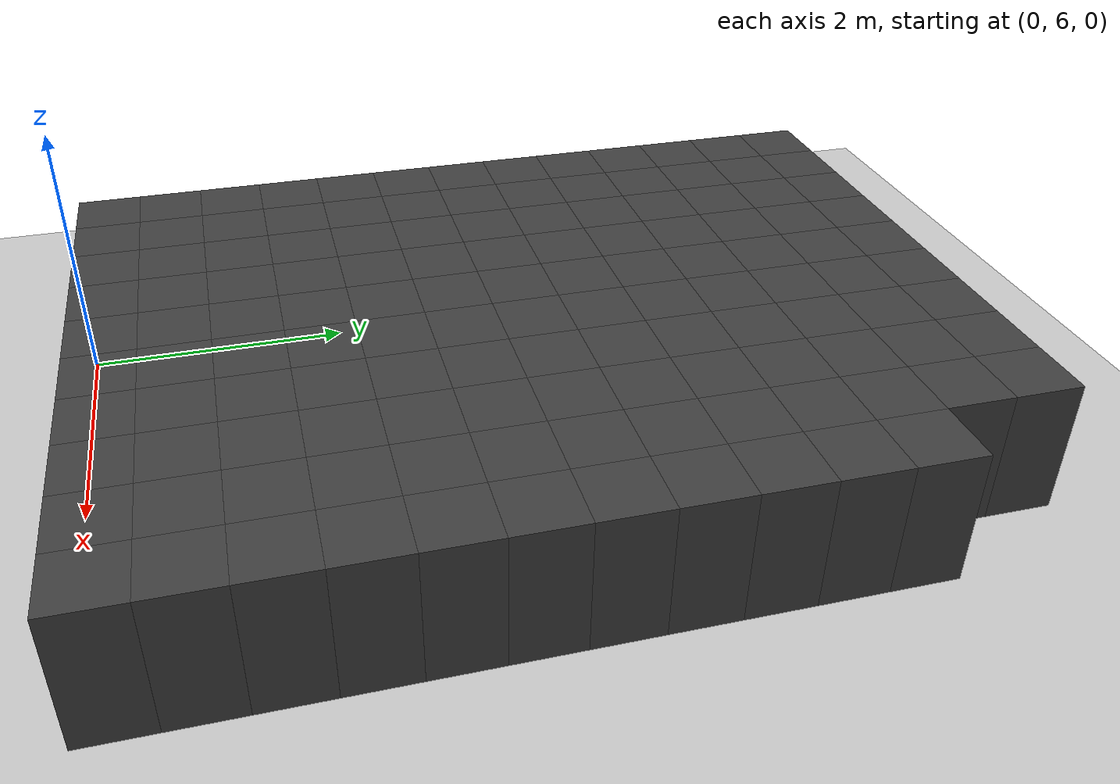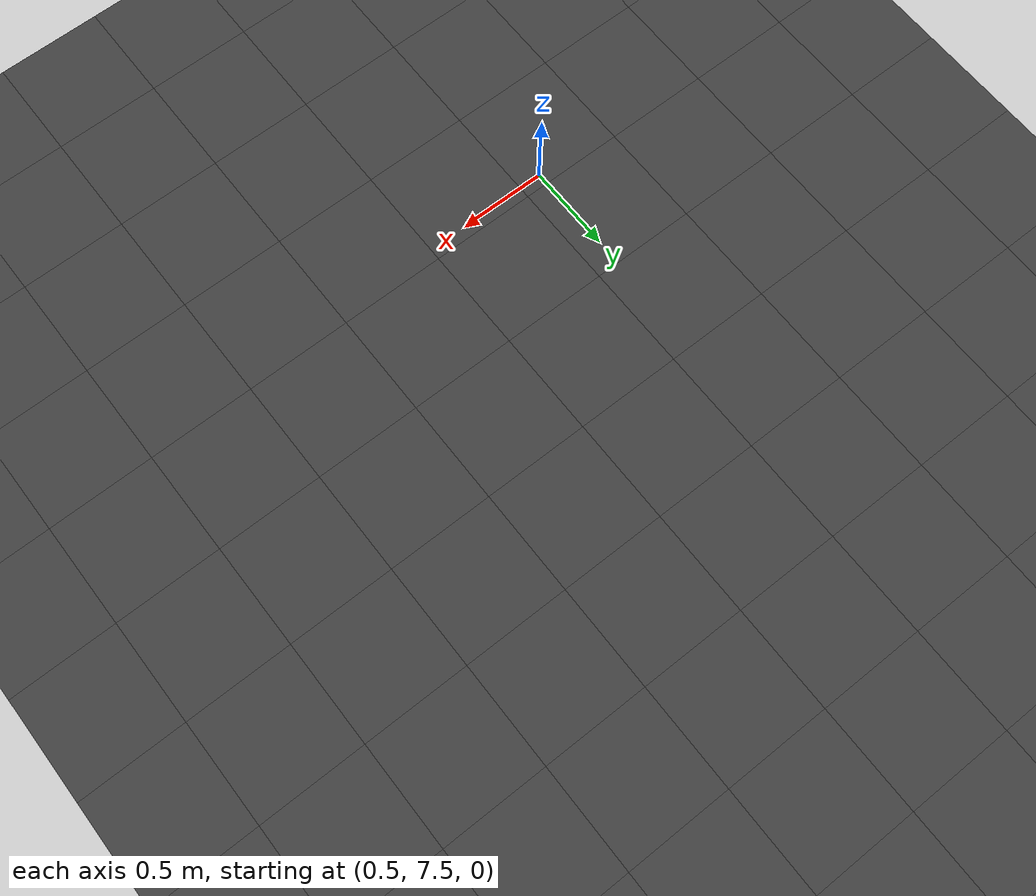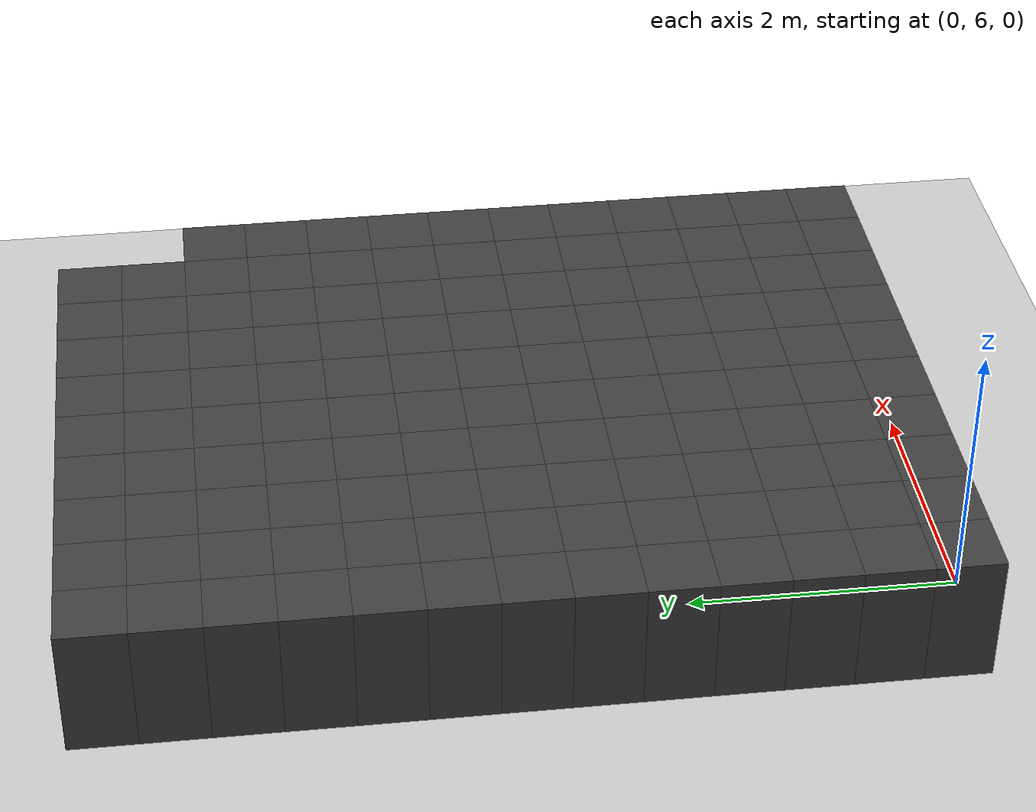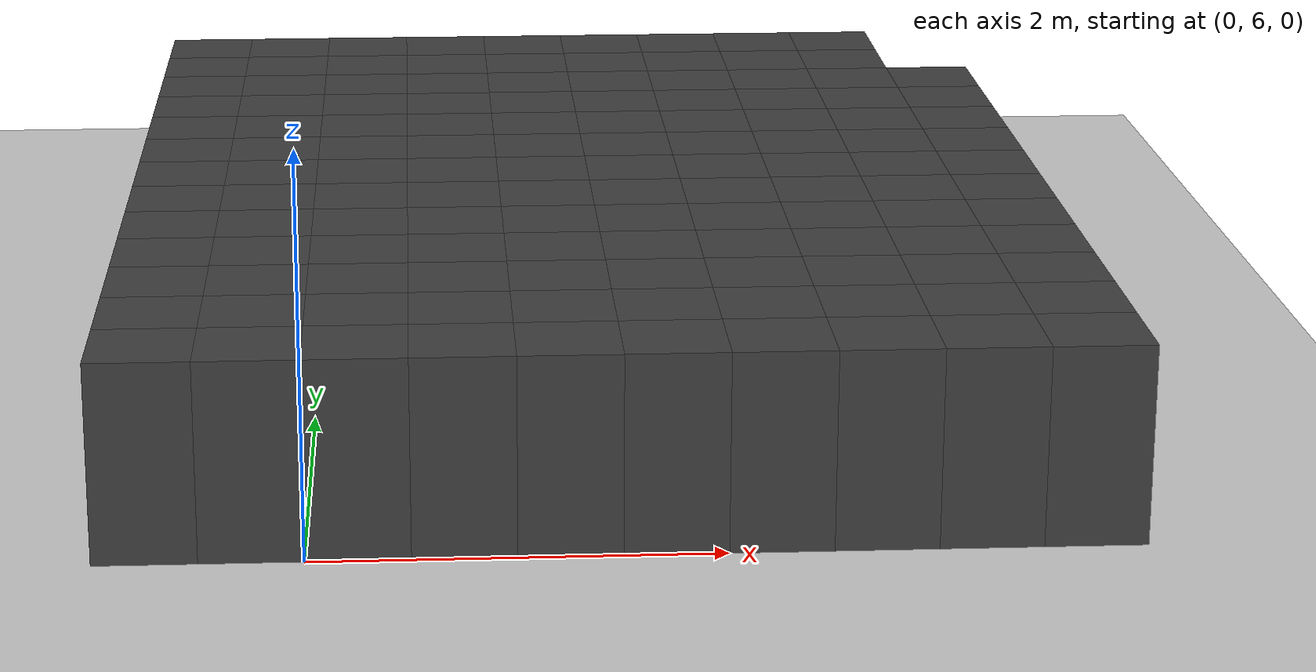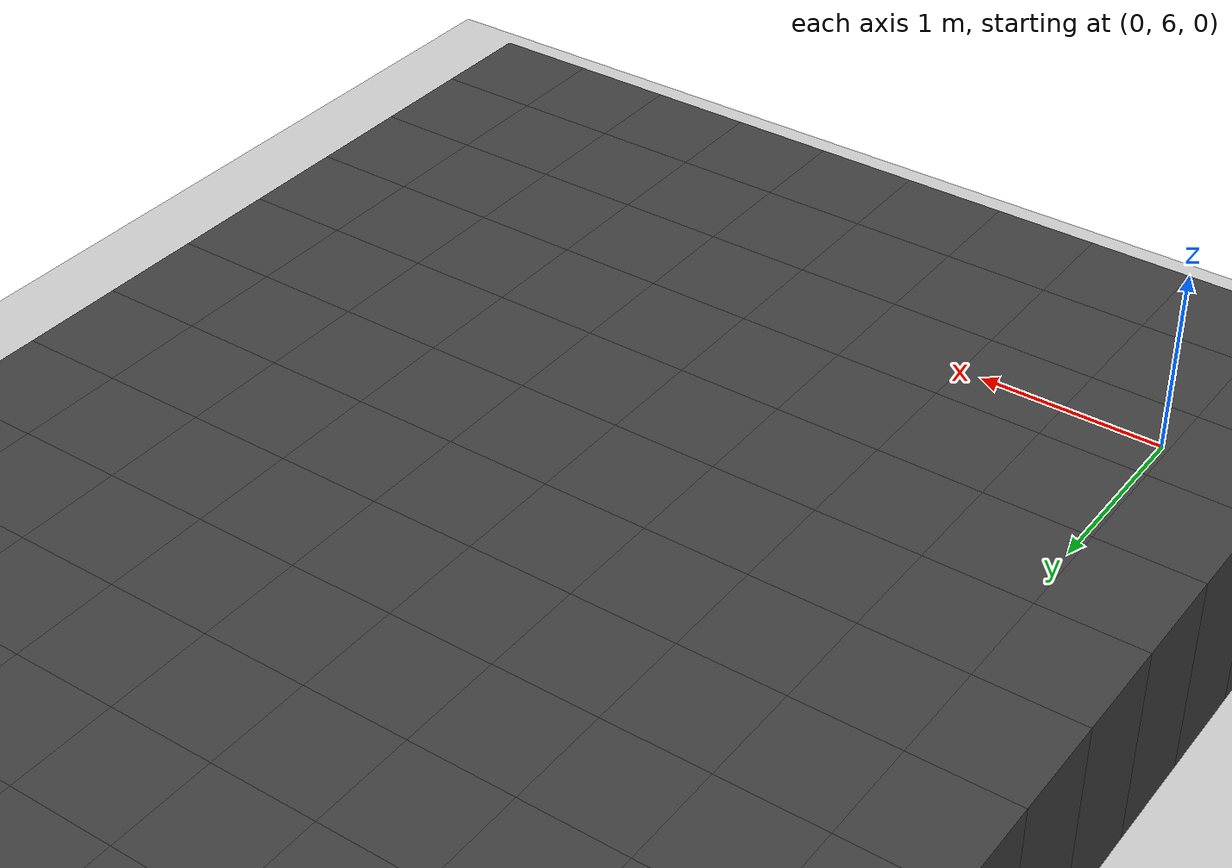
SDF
<sdf version="1.7">
 <world name="map_10777">
  <model name="ground_plane">
   <static>true</static>
   <link name="link">
    <collision name="collision">
     <geometry><plane><normal>0 0 1</normal><size>200 200</size></plane></geometry>
    </collision>
    <visual name="visual">
     <geometry><plane><normal>0 0 1</normal><size>200 200</size></plane></geometry>
     <material><ambient>0.8 0.8 0.8 1</ambient><diffuse>0.8 0.8 0.8 1</diffuse></material>
    </visual>
   </link>
  </model>
  <model name="maze_environment">
   <static>true</static>
   <link name="wall_23">
    <pose>-0.750 12.250 0.500 0 0 0</pose>
    <collision name="col"><geometry><box><size>0.5 0.5 1.0</size></box></geometry></collision>
    <visual name="vis">
     <geometry><box><size>0.5 0.5 1.0</size></box></geometry>
     <material><ambient>0.15 0.15 0.15 1</ambient><diffuse>0.25 0.25 0.25 1</diffuse></material>
    </visual>
   </link>
   <link name="wall_24">
    <pose>-0.250 12.250 0.500 0 0 0</pose>
    <collision name="col"><geometry><box><size>0.5 0.5 1.0</size></box></geometry></collision>
    <visual name="vis">
     <geometry><box><size>0.5 0.5 1.0</size></box></geometry>
     <material><ambient>0.15 0.15 0.15 1</ambient><diffuse>0.25 0.25 0.25 1</diffuse></material>
    </visual>
   </link>
   <link name="wall_25">
    <pose>0.250 12.250 0.500 0 0 0</pose>
    <collision name="col"><geometry><box><size>0.5 0.5 1.0</size></box></geometry></collision>
    <visual name="vis">
     <geometry><box><size>0.5 0.5 1.0</size></box></geometry>
     <material><ambient>0.15 0.15 0.15 1</ambient><diffuse>0.25 0.25 0.25 1</diffuse></material>
    </visual>
   </link>
   <link name="wall_26">
    <pose>0.750 12.250 0.500 0 0 0</pose>
    <collision name="col"><geometry><box><size>0.5 0.5 1.0</size></box></geometry></collision>
    <visual name="vis">
     <geometry><box><size>0.5 0.5 1.0</size></box></geometry>
     <material><ambient>0.15 0.15 0.15 1</ambient><diffuse>0.25 0.25 0.25 1</diffuse></material>
    </visual>
   </link>
   <link name="wall_27">
    <pose>1.250 12.250 0.500 0 0 0</pose>
    <collision name="col"><geometry><box><size>0.5 0.5 1.0</size></box></geometry></collision>
    <visual name="vis">
     <geometry><box><size>0.5 0.5 1.0</size></box></geometry>
     <material><ambient>0.15 0.15 0.15 1</ambient><diffuse>0.25 0.25 0.25 1</diffuse></material>
    </visual>
   </link>
   <link name="wall_28">
    <pose>1.750 12.250 0.500 0 0 0</pose>
    <collision name="col"><geometry><box><size>0.5 0.5 1.0</size></box></geometry></collision>
    <visual name="vis">
     <geometry><box><size>0.5 0.5 1.0</size></box></geometry>
     <material><ambient>0.15 0.15 0.15 1</ambient><diffuse>0.25 0.25 0.25 1</diffuse></material>
    </visual>
   </link>
   <link name="wall_29">
    <pose>2.250 12.250 0.500 0 0 0</pose>
    <collision name="col"><geometry><box><size>0.5 0.5 1.0</size></box></geometry></collision>
    <visual name="vis">
     <geometry><box><size>0.5 0.5 1.0</size></box></geometry>
     <material><ambient>0.15 0.15 0.15 1</ambient><diffuse>0.25 0.25 0.25 1</diffuse></material>
    </visual>
   </link>
   <link name="wall_30">
    <pose>2.750 12.250 0.500 0 0 0</pose>
    <collision name="col"><geometry><box><size>0.5 0.5 1.0</size></box></geometry></collision>
    <visual name="vis">
     <geometry><box><size>0.5 0.5 1.0</size></box></geometry>
     <material><ambient>0.15 0.15 0.15 1</ambient><diffuse>0.25 0.25 0.25 1</diffuse></material>
    </visual>
   </link>
   <link name="wall_31">
    <pose>3.250 12.250 0.500 0 0 0</pose>
    <collision name="col"><geometry><box><size>0.5 0.5 1.0</size></box></geometry></collision>
    <visual name="vis">
     <geometry><box><size>0.5 0.5 1.0</size></box></geometry>
     <material><ambient>0.15 0.15 0.15 1</ambient><diffuse>0.25 0.25 0.25 1</diffuse></material>
    </visual>
   </link>
   <link name="wall_70">
    <pose>-0.750 11.750 0.500 0 0 0</pose>
    <collision name="col"><geometry><box><size>0.5 0.5 1.0</size></box></geometry></collision>
    <visual name="vis">
     <geometry><box><size>0.5 0.5 1.0</size></box></geometry>
     <material><ambient>0.15 0.15 0.15 1</ambient><diffuse>0.25 0.25 0.25 1</diffuse></material>
    </visual>
   </link>
   <link name="wall_71">
    <pose>-0.250 11.750 0.500 0 0 0</pose>
    <collision name="col"><geometry><box><size>0.5 0.5 1.0</size></box></geometry></collision>
    <visual name="vis">
     <geometry><box><size>0.5 0.5 1.0</size></box></geometry>
     <material><ambient>0.15 0.15 0.15 1</ambient><diffuse>0.25 0.25 0.25 1</diffuse></material>
    </visual>
   </link>
   <link name="wall_72">
    <pose>0.250 11.750 0.500 0 0 0</pose>
    <collision name="col"><geometry><box><size>0.5 0.5 1.0</size></box></geometry></collision>
    <visual name="vis">
     <geometry><box><size>0.5 0.5 1.0</size></box></geometry>
     <material><ambient>0.15 0.15 0.15 1</ambient><diffuse>0.25 0.25 0.25 1</diffuse></material>
    </visual>
   </link>
   <link name="wall_73">
    <pose>0.750 11.750 0.500 0 0 0</pose>
    <collision name="col"><geometry><box><size>0.5 0.5 1.0</size></box></geometry></collision>
    <visual name="vis">
     <geometry><box><size>0.5 0.5 1.0</size></box></geometry>
     <material><ambient>0.15 0.15 0.15 1</ambient><diffuse>0.25 0.25 0.25 1</diffuse></material>
    </visual>
   </link>
   <link name="wall_74">
    <pose>1.250 11.750 0.500 0 0 0</pose>
    <collision name="col"><geometry><box><size>0.5 0.5 1.0</size></box></geometry></collision>
    <visual name="vis">
     <geometry><box><size>0.5 0.5 1.0</size></box></geometry>
     <material><ambient>0.15 0.15 0.15 1</ambient><diffuse>0.25 0.25 0.25 1</diffuse></material>
    </visual>
   </link>
   <link name="wall_75">
    <pose>1.750 11.750 0.500 0 0 0</pose>
    <collision name="col"><geometry><box><size>0.5 0.5 1.0</size></box></geometry></collision>
    <visual name="vis">
     <geometry><box><size>0.5 0.5 1.0</size></box></geometry>
     <material><ambient>0.15 0.15 0.15 1</ambient><diffuse>0.25 0.25 0.25 1</diffuse></material>
    </visual>
   </link>
   <link name="wall_76">
    <pose>2.250 11.750 0.500 0 0 0</pose>
    <collision name="col"><geometry><box><size>0.5 0.5 1.0</size></box></geometry></collision>
    <visual name="vis">
     <geometry><box><size>0.5 0.5 1.0</size></box></geometry>
     <material><ambient>0.15 0.15 0.15 1</ambient><diffuse>0.25 0.25 0.25 1</diffuse></material>
    </visual>
   </link>
   <link name="wall_77">
    <pose>2.750 11.750 0.500 0 0 0</pose>
    <collision name="col"><geometry><box><size>0.5 0.5 1.0</size></box></geometry></collision>
    <visual name="vis">
     <geometry><box><size>0.5 0.5 1.0</size></box></geometry>
     <material><ambient>0.15 0.15 0.15 1</ambient><diffuse>0.25 0.25 0.25 1</diffuse></material>
    </visual>
   </link>
   <link name="wall_78">
    <pose>3.250 11.750 0.500 0 0 0</pose>
    <collision name="col"><geometry><box><size>0.5 0.5 1.0</size></box></geometry></collision>
    <visual name="vis">
     <geometry><box><size>0.5 0.5 1.0</size></box></geometry>
     <material><ambient>0.15 0.15 0.15 1</ambient><diffuse>0.25 0.25 0.25 1</diffuse></material>
    </visual>
   </link>
   <link name="wall_117">
    <pose>-0.750 11.250 0.500 0 0 0</pose>
    <collision name="col"><geometry><box><size>0.5 0.5 1.0</size></box></geometry></collision>
    <visual name="vis">
     <geometry><box><size>0.5 0.5 1.0</size></box></geometry>
     <material><ambient>0.15 0.15 0.15 1</ambient><diffuse>0.25 0.25 0.25 1</diffuse></material>
    </visual>
   </link>
   <link name="wall_118">
    <pose>-0.250 11.250 0.500 0 0 0</pose>
    <collision name="col"><geometry><box><size>0.5 0.5 1.0</size></box></geometry></collision>
    <visual name="vis">
     <geometry><box><size>0.5 0.5 1.0</size></box></geometry>
     <material><ambient>0.15 0.15 0.15 1</ambient><diffuse>0.25 0.25 0.25 1</diffuse></material>
    </visual>
   </link>
   <link name="wall_119">
    <pose>0.250 11.250 0.500 0 0 0</pose>
    <collision name="col"><geometry><box><size>0.5 0.5 1.0</size></box></geometry></collision>
    <visual name="vis">
     <geometry><box><size>0.5 0.5 1.0</size></box></geometry>
     <material><ambient>0.15 0.15 0.15 1</ambient><diffuse>0.25 0.25 0.25 1</diffuse></material>
    </visual>
   </link>
   <link name="wall_120">
    <pose>0.750 11.250 0.500 0 0 0</pose>
    <collision name="col"><geometry><box><size>0.5 0.5 1.0</size></box></geometry></collision>
    <visual name="vis">
     <geometry><box><size>0.5 0.5 1.0</size></box></geometry>
     <material><ambient>0.15 0.15 0.15 1</ambient><diffuse>0.25 0.25 0.25 1</diffuse></material>
    </visual>
   </link>
   <link name="wall_121">
    <pose>1.250 11.250 0.500 0 0 0</pose>
    <collision name="col"><geometry><box><size>0.5 0.5 1.0</size></box></geometry></collision>
    <visual name="vis">
     <geometry><box><size>0.5 0.5 1.0</size></box></geometry>
     <material><ambient>0.15 0.15 0.15 1</ambient><diffuse>0.25 0.25 0.25 1</diffuse></material>
    </visual>
   </link>
   <link name="wall_122">
    <pose>1.750 11.250 0.500 0 0 0</pose>
    <collision name="col"><geometry><box><size>0.5 0.5 1.0</size></box></geometry></collision>
    <visual name="vis">
     <geometry><box><size>0.5 0.5 1.0</size></box></geometry>
     <material><ambient>0.15 0.15 0.15 1</ambient><diffuse>0.25 0.25 0.25 1</diffuse></material>
    </visual>
   </link>
   <link name="wall_123">
    <pose>2.250 11.250 0.500 0 0 0</pose>
    <collision name="col"><geometry><box><size>0.5 0.5 1.0</size></box></geometry></collision>
    <visual name="vis">
     <geometry><box><size>0.5 0.5 1.0</size></box></geometry>
     <material><ambient>0.15 0.15 0.15 1</ambient><diffuse>0.25 0.25 0.25 1</diffuse></material>
    </visual>
   </link>
   <link name="wall_124">
    <pose>2.750 11.250 0.500 0 0 0</pose>
    <collision name="col"><geometry><box><size>0.5 0.5 1.0</size></box></geometry></collision>
    <visual name="vis">
     <geometry><box><size>0.5 0.5 1.0</size></box></geometry>
     <material><ambient>0.15 0.15 0.15 1</ambient><diffuse>0.25 0.25 0.25 1</diffuse></material>
    </visual>
   </link>
   <link name="wall_125">
    <pose>3.250 11.250 0.500 0 0 0</pose>
    <collision name="col"><geometry><box><size>0.5 0.5 1.0</size></box></geometry></collision>
    <visual name="vis">
     <geometry><box><size>0.5 0.5 1.0</size></box></geometry>
     <material><ambient>0.15 0.15 0.15 1</ambient><diffuse>0.25 0.25 0.25 1</diffuse></material>
    </visual>
   </link>
   <link name="wall_126">
    <pose>3.750 11.250 0.500 0 0 0</pose>
    <collision name="col"><geometry><box><size>0.5 0.5 1.0</size></box></geometry></collision>
    <visual name="vis">
     <geometry><box><size>0.5 0.5 1.0</size></box></geometry>
     <material><ambient>0.15 0.15 0.15 1</ambient><diffuse>0.25 0.25 0.25 1</diffuse></material>
    </visual>
   </link>
   <link name="wall_164">
    <pose>-0.750 10.750 0.500 0 0 0</pose>
    <collision name="col"><geometry><box><size>0.5 0.5 1.0</size></box></geometry></collision>
    <visual name="vis">
     <geometry><box><size>0.5 0.5 1.0</size></box></geometry>
     <material><ambient>0.15 0.15 0.15 1</ambient><diffuse>0.25 0.25 0.25 1</diffuse></material>
    </visual>
   </link>
   <link name="wall_165">
    <pose>-0.250 10.750 0.500 0 0 0</pose>
    <collision name="col"><geometry><box><size>0.5 0.5 1.0</size></box></geometry></collision>
    <visual name="vis">
     <geometry><box><size>0.5 0.5 1.0</size></box></geometry>
     <material><ambient>0.15 0.15 0.15 1</ambient><diffuse>0.25 0.25 0.25 1</diffuse></material>
    </visual>
   </link>
   <link name="wall_166">
    <pose>0.250 10.750 0.500 0 0 0</pose>
    <collision name="col"><geometry><box><size>0.5 0.5 1.0</size></box></geometry></collision>
    <visual name="vis">
     <geometry><box><size>0.5 0.5 1.0</size></box></geometry>
     <material><ambient>0.15 0.15 0.15 1</ambient><diffuse>0.25 0.25 0.25 1</diffuse></material>
    </visual>
   </link>
   <link name="wall_167">
    <pose>0.750 10.750 0.500 0 0 0</pose>
    <collision name="col"><geometry><box><size>0.5 0.5 1.0</size></box></geometry></collision>
    <visual name="vis">
     <geometry><box><size>0.5 0.5 1.0</size></box></geometry>
     <material><ambient>0.15 0.15 0.15 1</ambient><diffuse>0.25 0.25 0.25 1</diffuse></material>
    </visual>
   </link>
   <link name="wall_168">
    <pose>1.250 10.750 0.500 0 0 0</pose>
    <collision name="col"><geometry><box><size>0.5 0.5 1.0</size></box></geometry></collision>
    <visual name="vis">
     <geometry><box><size>0.5 0.5 1.0</size></box></geometry>
     <material><ambient>0.15 0.15 0.15 1</ambient><diffuse>0.25 0.25 0.25 1</diffuse></material>
    </visual>
   </link>
   <link name="wall_169">
    <pose>1.750 10.750 0.500 0 0 0</pose>
    <collision name="col"><geometry><box><size>0.5 0.5 1.0</size></box></geometry></collision>
    <visual name="vis">
     <geometry><box><size>0.5 0.5 1.0</size></box></geometry>
     <material><ambient>0.15 0.15 0.15 1</ambient><diffuse>0.25 0.25 0.25 1</diffuse></material>
    </visual>
   </link>
   <link name="wall_170">
    <pose>2.250 10.750 0.500 0 0 0</pose>
    <collision name="col"><geometry><box><size>0.5 0.5 1.0</size></box></geometry></collision>
    <visual name="vis">
     <geometry><box><size>0.5 0.5 1.0</size></box></geometry>
     <material><ambient>0.15 0.15 0.15 1</ambient><diffuse>0.25 0.25 0.25 1</diffuse></material>
    </visual>
   </link>
   <link name="wall_171">
    <pose>2.750 10.750 0.500 0 0 0</pose>
    <collision name="col"><geometry><box><size>0.5 0.5 1.0</size></box></geometry></collision>
    <visual name="vis">
     <geometry><box><size>0.5 0.5 1.0</size></box></geometry>
     <material><ambient>0.15 0.15 0.15 1</ambient><diffuse>0.25 0.25 0.25 1</diffuse></material>
    </visual>
   </link>
   <link name="wall_172">
    <pose>3.250 10.750 0.500 0 0 0</pose>
    <collision name="col"><geometry><box><size>0.5 0.5 1.0</size></box></geometry></collision>
    <visual name="vis">
     <geometry><box><size>0.5 0.5 1.0</size></box></geometry>
     <material><ambient>0.15 0.15 0.15 1</ambient><diffuse>0.25 0.25 0.25 1</diffuse></material>
    </visual>
   </link>
   <link name="wall_173">
    <pose>3.750 10.750 0.500 0 0 0</pose>
    <collision name="col"><geometry><box><size>0.5 0.5 1.0</size></box></geometry></collision>
    <visual name="vis">
     <geometry><box><size>0.5 0.5 1.0</size></box></geometry>
     <material><ambient>0.15 0.15 0.15 1</ambient><diffuse>0.25 0.25 0.25 1</diffuse></material>
    </visual>
   </link>
   <link name="wall_213">
    <pose>-0.750 10.250 0.500 0 0 0</pose>
    <collision name="col"><geometry><box><size>0.5 0.5 1.0</size></box></geometry></collision>
    <visual name="vis">
     <geometry><box><size>0.5 0.5 1.0</size></box></geometry>
     <material><ambient>0.15 0.15 0.15 1</ambient><diffuse>0.25 0.25 0.25 1</diffuse></material>
    </visual>
   </link>
   <link name="wall_214">
    <pose>-0.250 10.250 0.500 0 0 0</pose>
    <collision name="col"><geometry><box><size>0.5 0.5 1.0</size></box></geometry></collision>
    <visual name="vis">
     <geometry><box><size>0.5 0.5 1.0</size></box></geometry>
     <material><ambient>0.15 0.15 0.15 1</ambient><diffuse>0.25 0.25 0.25 1</diffuse></material>
    </visual>
   </link>
   <link name="wall_215">
    <pose>0.250 10.250 0.500 0 0 0</pose>
    <collision name="col"><geometry><box><size>0.5 0.5 1.0</size></box></geometry></collision>
    <visual name="vis">
     <geometry><box><size>0.5 0.5 1.0</size></box></geometry>
     <material><ambient>0.15 0.15 0.15 1</ambient><diffuse>0.25 0.25 0.25 1</diffuse></material>
    </visual>
   </link>
   <link name="wall_216">
    <pose>0.750 10.250 0.500 0 0 0</pose>
    <collision name="col"><geometry><box><size>0.5 0.5 1.0</size></box></geometry></collision>
    <visual name="vis">
     <geometry><box><size>0.5 0.5 1.0</size></box></geometry>
     <material><ambient>0.15 0.15 0.15 1</ambient><diffuse>0.25 0.25 0.25 1</diffuse></material>
    </visual>
   </link>
   <link name="wall_217">
    <pose>1.250 10.250 0.500 0 0 0</pose>
    <collision name="col"><geometry><box><size>0.5 0.5 1.0</size></box></geometry></collision>
    <visual name="vis">
     <geometry><box><size>0.5 0.5 1.0</size></box></geometry>
     <material><ambient>0.15 0.15 0.15 1</ambient><diffuse>0.25 0.25 0.25 1</diffuse></material>
    </visual>
   </link>
   <link name="wall_218">
    <pose>1.750 10.250 0.500 0 0 0</pose>
    <collision name="col"><geometry><box><size>0.5 0.5 1.0</size></box></geometry></collision>
    <visual name="vis">
     <geometry><box><size>0.5 0.5 1.0</size></box></geometry>
     <material><ambient>0.15 0.15 0.15 1</ambient><diffuse>0.25 0.25 0.25 1</diffuse></material>
    </visual>
   </link>
   <link name="wall_219">
    <pose>2.250 10.250 0.500 0 0 0</pose>
    <collision name="col"><geometry><box><size>0.5 0.5 1.0</size></box></geometry></collision>
    <visual name="vis">
     <geometry><box><size>0.5 0.5 1.0</size></box></geometry>
     <material><ambient>0.15 0.15 0.15 1</ambient><diffuse>0.25 0.25 0.25 1</diffuse></material>
    </visual>
   </link>
   <link name="wall_220">
    <pose>2.750 10.250 0.500 0 0 0</pose>
    <collision name="col"><geometry><box><size>0.5 0.5 1.0</size></box></geometry></collision>
    <visual name="vis">
     <geometry><box><size>0.5 0.5 1.0</size></box></geometry>
     <material><ambient>0.15 0.15 0.15 1</ambient><diffuse>0.25 0.25 0.25 1</diffuse></material>
    </visual>
   </link>
   <link name="wall_221">
    <pose>3.250 10.250 0.500 0 0 0</pose>
    <collision name="col"><geometry><box><size>0.5 0.5 1.0</size></box></geometry></collision>
    <visual name="vis">
     <geometry><box><size>0.5 0.5 1.0</size></box></geometry>
     <material><ambient>0.15 0.15 0.15 1</ambient><diffuse>0.25 0.25 0.25 1</diffuse></material>
    </visual>
   </link>
   <link name="wall_222">
    <pose>3.750 10.250 0.500 0 0 0</pose>
    <collision name="col"><geometry><box><size>0.5 0.5 1.0</size></box></geometry></collision>
    <visual name="vis">
     <geometry><box><size>0.5 0.5 1.0</size></box></geometry>
     <material><ambient>0.15 0.15 0.15 1</ambient><diffuse>0.25 0.25 0.25 1</diffuse></material>
    </visual>
   </link>
   <link name="wall_262">
    <pose>-0.750 9.750 0.500 0 0 0</pose>
    <collision name="col"><geometry><box><size>0.5 0.5 1.0</size></box></geometry></collision>
    <visual name="vis">
     <geometry><box><size>0.5 0.5 1.0</size></box></geometry>
     <material><ambient>0.15 0.15 0.15 1</ambient><diffuse>0.25 0.25 0.25 1</diffuse></material>
    </visual>
   </link>
   <link name="wall_263">
    <pose>-0.250 9.750 0.500 0 0 0</pose>
    <collision name="col"><geometry><box><size>0.5 0.5 1.0</size></box></geometry></collision>
    <visual name="vis">
     <geometry><box><size>0.5 0.5 1.0</size></box></geometry>
     <material><ambient>0.15 0.15 0.15 1</ambient><diffuse>0.25 0.25 0.25 1</diffuse></material>
    </visual>
   </link>
   <link name="wall_264">
    <pose>0.250 9.750 0.500 0 0 0</pose>
    <collision name="col"><geometry><box><size>0.5 0.5 1.0</size></box></geometry></collision>
    <visual name="vis">
     <geometry><box><size>0.5 0.5 1.0</size></box></geometry>
     <material><ambient>0.15 0.15 0.15 1</ambient><diffuse>0.25 0.25 0.25 1</diffuse></material>
    </visual>
   </link>
   <link name="wall_265">
    <pose>0.750 9.750 0.500 0 0 0</pose>
    <collision name="col"><geometry><box><size>0.5 0.5 1.0</size></box></geometry></collision>
    <visual name="vis">
     <geometry><box><size>0.5 0.5 1.0</size></box></geometry>
     <material><ambient>0.15 0.15 0.15 1</ambient><diffuse>0.25 0.25 0.25 1</diffuse></material>
    </visual>
   </link>
   <link name="wall_266">
    <pose>1.250 9.750 0.500 0 0 0</pose>
    <collision name="col"><geometry><box><size>0.5 0.5 1.0</size></box></geometry></collision>
    <visual name="vis">
     <geometry><box><size>0.5 0.5 1.0</size></box></geometry>
     <material><ambient>0.15 0.15 0.15 1</ambient><diffuse>0.25 0.25 0.25 1</diffuse></material>
    </visual>
   </link>
   <link name="wall_267">
    <pose>1.750 9.750 0.500 0 0 0</pose>
    <collision name="col"><geometry><box><size>0.5 0.5 1.0</size></box></geometry></collision>
    <visual name="vis">
     <geometry><box><size>0.5 0.5 1.0</size></box></geometry>
     <material><ambient>0.15 0.15 0.15 1</ambient><diffuse>0.25 0.25 0.25 1</diffuse></material>
    </visual>
   </link>
   <link name="wall_268">
    <pose>2.250 9.750 0.500 0 0 0</pose>
    <collision name="col"><geometry><box><size>0.5 0.5 1.0</size></box></geometry></collision>
    <visual name="vis">
     <geometry><box><size>0.5 0.5 1.0</size></box></geometry>
     <material><ambient>0.15 0.15 0.15 1</ambient><diffuse>0.25 0.25 0.25 1</diffuse></material>
    </visual>
   </link>
   <link name="wall_269">
    <pose>2.750 9.750 0.500 0 0 0</pose>
    <collision name="col"><geometry><box><size>0.5 0.5 1.0</size></box></geometry></collision>
    <visual name="vis">
     <geometry><box><size>0.5 0.5 1.0</size></box></geometry>
     <material><ambient>0.15 0.15 0.15 1</ambient><diffuse>0.25 0.25 0.25 1</diffuse></material>
    </visual>
   </link>
   <link name="wall_270">
    <pose>3.250 9.750 0.500 0 0 0</pose>
    <collision name="col"><geometry><box><size>0.5 0.5 1.0</size></box></geometry></collision>
    <visual name="vis">
     <geometry><box><size>0.5 0.5 1.0</size></box></geometry>
     <material><ambient>0.15 0.15 0.15 1</ambient><diffuse>0.25 0.25 0.25 1</diffuse></material>
    </visual>
   </link>
   <link name="wall_271">
    <pose>3.750 9.750 0.500 0 0 0</pose>
    <collision name="col"><geometry><box><size>0.5 0.5 1.0</size></box></geometry></collision>
    <visual name="vis">
     <geometry><box><size>0.5 0.5 1.0</size></box></geometry>
     <material><ambient>0.15 0.15 0.15 1</ambient><diffuse>0.25 0.25 0.25 1</diffuse></material>
    </visual>
   </link>
   <link name="wall_311">
    <pose>-0.750 9.250 0.500 0 0 0</pose>
    <collision name="col"><geometry><box><size>0.5 0.5 1.0</size></box></geometry></collision>
    <visual name="vis">
     <geometry><box><size>0.5 0.5 1.0</size></box></geometry>
     <material><ambient>0.15 0.15 0.15 1</ambient><diffuse>0.25 0.25 0.25 1</diffuse></material>
    </visual>
   </link>
   <link name="wall_312">
    <pose>-0.250 9.250 0.500 0 0 0</pose>
    <collision name="col"><geometry><box><size>0.5 0.5 1.0</size></box></geometry></collision>
    <visual name="vis">
     <geometry><box><size>0.5 0.5 1.0</size></box></geometry>
     <material><ambient>0.15 0.15 0.15 1</ambient><diffuse>0.25 0.25 0.25 1</diffuse></material>
    </visual>
   </link>
   <link name="wall_313">
    <pose>0.250 9.250 0.500 0 0 0</pose>
    <collision name="col"><geometry><box><size>0.5 0.5 1.0</size></box></geometry></collision>
    <visual name="vis">
     <geometry><box><size>0.5 0.5 1.0</size></box></geometry>
     <material><ambient>0.15 0.15 0.15 1</ambient><diffuse>0.25 0.25 0.25 1</diffuse></material>
    </visual>
   </link>
   <link name="wall_314">
    <pose>0.750 9.250 0.500 0 0 0</pose>
    <collision name="col"><geometry><box><size>0.5 0.5 1.0</size></box></geometry></collision>
    <visual name="vis">
     <geometry><box><size>0.5 0.5 1.0</size></box></geometry>
     <material><ambient>0.15 0.15 0.15 1</ambient><diffuse>0.25 0.25 0.25 1</diffuse></material>
    </visual>
   </link>
   <link name="wall_315">
    <pose>1.250 9.250 0.500 0 0 0</pose>
    <collision name="col"><geometry><box><size>0.5 0.5 1.0</size></box></geometry></collision>
    <visual name="vis">
     <geometry><box><size>0.5 0.5 1.0</size></box></geometry>
     <material><ambient>0.15 0.15 0.15 1</ambient><diffuse>0.25 0.25 0.25 1</diffuse></material>
    </visual>
   </link>
   <link name="wall_316">
    <pose>1.750 9.250 0.500 0 0 0</pose>
    <collision name="col"><geometry><box><size>0.5 0.5 1.0</size></box></geometry></collision>
    <visual name="vis">
     <geometry><box><size>0.5 0.5 1.0</size></box></geometry>
     <material><ambient>0.15 0.15 0.15 1</ambient><diffuse>0.25 0.25 0.25 1</diffuse></material>
    </visual>
   </link>
   <link name="wall_317">
    <pose>2.250 9.250 0.500 0 0 0</pose>
    <collision name="col"><geometry><box><size>0.5 0.5 1.0</size></box></geometry></collision>
    <visual name="vis">
     <geometry><box><size>0.5 0.5 1.0</size></box></geometry>
     <material><ambient>0.15 0.15 0.15 1</ambient><diffuse>0.25 0.25 0.25 1</diffuse></material>
    </visual>
   </link>
   <link name="wall_318">
    <pose>2.750 9.250 0.500 0 0 0</pose>
    <collision name="col"><geometry><box><size>0.5 0.5 1.0</size></box></geometry></collision>
    <visual name="vis">
     <geometry><box><size>0.5 0.5 1.0</size></box></geometry>
     <material><ambient>0.15 0.15 0.15 1</ambient><diffuse>0.25 0.25 0.25 1</diffuse></material>
    </visual>
   </link>
   <link name="wall_319">
    <pose>3.250 9.250 0.500 0 0 0</pose>
    <collision name="col"><geometry><box><size>0.5 0.5 1.0</size></box></geometry></collision>
    <visual name="vis">
     <geometry><box><size>0.5 0.5 1.0</size></box></geometry>
     <material><ambient>0.15 0.15 0.15 1</ambient><diffuse>0.25 0.25 0.25 1</diffuse></material>
    </visual>
   </link>
   <link name="wall_320">
    <pose>3.750 9.250 0.500 0 0 0</pose>
    <collision name="col"><geometry><box><size>0.5 0.5 1.0</size></box></geometry></collision>
    <visual name="vis">
     <geometry><box><size>0.5 0.5 1.0</size></box></geometry>
     <material><ambient>0.15 0.15 0.15 1</ambient><diffuse>0.25 0.25 0.25 1</diffuse></material>
    </visual>
   </link>
   <link name="wall_360">
    <pose>-0.750 8.750 0.500 0 0 0</pose>
    <collision name="col"><geometry><box><size>0.5 0.5 1.0</size></box></geometry></collision>
    <visual name="vis">
     <geometry><box><size>0.5 0.5 1.0</size></box></geometry>
     <material><ambient>0.15 0.15 0.15 1</ambient><diffuse>0.25 0.25 0.25 1</diffuse></material>
    </visual>
   </link>
   <link name="wall_361">
    <pose>-0.250 8.750 0.500 0 0 0</pose>
    <collision name="col"><geometry><box><size>0.5 0.5 1.0</size></box></geometry></collision>
    <visual name="vis">
     <geometry><box><size>0.5 0.5 1.0</size></box></geometry>
     <material><ambient>0.15 0.15 0.15 1</ambient><diffuse>0.25 0.25 0.25 1</diffuse></material>
    </visual>
   </link>
   <link name="wall_362">
    <pose>0.250 8.750 0.500 0 0 0</pose>
    <collision name="col"><geometry><box><size>0.5 0.5 1.0</size></box></geometry></collision>
    <visual name="vis">
     <geometry><box><size>0.5 0.5 1.0</size></box></geometry>
     <material><ambient>0.15 0.15 0.15 1</ambient><diffuse>0.25 0.25 0.25 1</diffuse></material>
    </visual>
   </link>
   <link name="wall_363">
    <pose>0.750 8.750 0.500 0 0 0</pose>
    <collision name="col"><geometry><box><size>0.5 0.5 1.0</size></box></geometry></collision>
    <visual name="vis">
     <geometry><box><size>0.5 0.5 1.0</size></box></geometry>
     <material><ambient>0.15 0.15 0.15 1</ambient><diffuse>0.25 0.25 0.25 1</diffuse></material>
    </visual>
   </link>
   <link name="wall_364">
    <pose>1.250 8.750 0.500 0 0 0</pose>
    <collision name="col"><geometry><box><size>0.5 0.5 1.0</size></box></geometry></collision>
    <visual name="vis">
     <geometry><box><size>0.5 0.5 1.0</size></box></geometry>
     <material><ambient>0.15 0.15 0.15 1</ambient><diffuse>0.25 0.25 0.25 1</diffuse></material>
    </visual>
   </link>
   <link name="wall_365">
    <pose>1.750 8.750 0.500 0 0 0</pose>
    <collision name="col"><geometry><box><size>0.5 0.5 1.0</size></box></geometry></collision>
    <visual name="vis">
     <geometry><box><size>0.5 0.5 1.0</size></box></geometry>
     <material><ambient>0.15 0.15 0.15 1</ambient><diffuse>0.25 0.25 0.25 1</diffuse></material>
    </visual>
   </link>
   <link name="wall_366">
    <pose>2.250 8.750 0.500 0 0 0</pose>
    <collision name="col"><geometry><box><size>0.5 0.5 1.0</size></box></geometry></collision>
    <visual name="vis">
     <geometry><box><size>0.5 0.5 1.0</size></box></geometry>
     <material><ambient>0.15 0.15 0.15 1</ambient><diffuse>0.25 0.25 0.25 1</diffuse></material>
    </visual>
   </link>
   <link name="wall_367">
    <pose>2.750 8.750 0.500 0 0 0</pose>
    <collision name="col"><geometry><box><size>0.5 0.5 1.0</size></box></geometry></collision>
    <visual name="vis">
     <geometry><box><size>0.5 0.5 1.0</size></box></geometry>
     <material><ambient>0.15 0.15 0.15 1</ambient><diffuse>0.25 0.25 0.25 1</diffuse></material>
    </visual>
   </link>
   <link name="wall_368">
    <pose>3.250 8.750 0.500 0 0 0</pose>
    <collision name="col"><geometry><box><size>0.5 0.5 1.0</size></box></geometry></collision>
    <visual name="vis">
     <geometry><box><size>0.5 0.5 1.0</size></box></geometry>
     <material><ambient>0.15 0.15 0.15 1</ambient><diffuse>0.25 0.25 0.25 1</diffuse></material>
    </visual>
   </link>
   <link name="wall_369">
    <pose>3.750 8.750 0.500 0 0 0</pose>
    <collision name="col"><geometry><box><size>0.5 0.5 1.0</size></box></geometry></collision>
    <visual name="vis">
     <geometry><box><size>0.5 0.5 1.0</size></box></geometry>
     <material><ambient>0.15 0.15 0.15 1</ambient><diffuse>0.25 0.25 0.25 1</diffuse></material>
    </visual>
   </link>
   <link name="wall_409">
    <pose>-0.750 8.250 0.500 0 0 0</pose>
    <collision name="col"><geometry><box><size>0.5 0.5 1.0</size></box></geometry></collision>
    <visual name="vis">
     <geometry><box><size>0.5 0.5 1.0</size></box></geometry>
     <material><ambient>0.15 0.15 0.15 1</ambient><diffuse>0.25 0.25 0.25 1</diffuse></material>
    </visual>
   </link>
   <link name="wall_410">
    <pose>-0.250 8.250 0.500 0 0 0</pose>
    <collision name="col"><geometry><box><size>0.5 0.5 1.0</size></box></geometry></collision>
    <visual name="vis">
     <geometry><box><size>0.5 0.5 1.0</size></box></geometry>
     <material><ambient>0.15 0.15 0.15 1</ambient><diffuse>0.25 0.25 0.25 1</diffuse></material>
    </visual>
   </link>
   <link name="wall_411">
    <pose>0.250 8.250 0.500 0 0 0</pose>
    <collision name="col"><geometry><box><size>0.5 0.5 1.0</size></box></geometry></collision>
    <visual name="vis">
     <geometry><box><size>0.5 0.5 1.0</size></box></geometry>
     <material><ambient>0.15 0.15 0.15 1</ambient><diffuse>0.25 0.25 0.25 1</diffuse></material>
    </visual>
   </link>
   <link name="wall_412">
    <pose>0.750 8.250 0.500 0 0 0</pose>
    <collision name="col"><geometry><box><size>0.5 0.5 1.0</size></box></geometry></collision>
    <visual name="vis">
     <geometry><box><size>0.5 0.5 1.0</size></box></geometry>
     <material><ambient>0.15 0.15 0.15 1</ambient><diffuse>0.25 0.25 0.25 1</diffuse></material>
    </visual>
   </link>
   <link name="wall_413">
    <pose>1.250 8.250 0.500 0 0 0</pose>
    <collision name="col"><geometry><box><size>0.5 0.5 1.0</size></box></geometry></collision>
    <visual name="vis">
     <geometry><box><size>0.5 0.5 1.0</size></box></geometry>
     <material><ambient>0.15 0.15 0.15 1</ambient><diffuse>0.25 0.25 0.25 1</diffuse></material>
    </visual>
   </link>
   <link name="wall_414">
    <pose>1.750 8.250 0.500 0 0 0</pose>
    <collision name="col"><geometry><box><size>0.5 0.5 1.0</size></box></geometry></collision>
    <visual name="vis">
     <geometry><box><size>0.5 0.5 1.0</size></box></geometry>
     <material><ambient>0.15 0.15 0.15 1</ambient><diffuse>0.25 0.25 0.25 1</diffuse></material>
    </visual>
   </link>
   <link name="wall_415">
    <pose>2.250 8.250 0.500 0 0 0</pose>
    <collision name="col"><geometry><box><size>0.5 0.5 1.0</size></box></geometry></collision>
    <visual name="vis">
     <geometry><box><size>0.5 0.5 1.0</size></box></geometry>
     <material><ambient>0.15 0.15 0.15 1</ambient><diffuse>0.25 0.25 0.25 1</diffuse></material>
    </visual>
   </link>
   <link name="wall_416">
    <pose>2.750 8.250 0.500 0 0 0</pose>
    <collision name="col"><geometry><box><size>0.5 0.5 1.0</size></box></geometry></collision>
    <visual name="vis">
     <geometry><box><size>0.5 0.5 1.0</size></box></geometry>
     <material><ambient>0.15 0.15 0.15 1</ambient><diffuse>0.25 0.25 0.25 1</diffuse></material>
    </visual>
   </link>
   <link name="wall_417">
    <pose>3.250 8.250 0.500 0 0 0</pose>
    <collision name="col"><geometry><box><size>0.5 0.5 1.0</size></box></geometry></collision>
    <visual name="vis">
     <geometry><box><size>0.5 0.5 1.0</size></box></geometry>
     <material><ambient>0.15 0.15 0.15 1</ambient><diffuse>0.25 0.25 0.25 1</diffuse></material>
    </visual>
   </link>
   <link name="wall_418">
    <pose>3.750 8.250 0.500 0 0 0</pose>
    <collision name="col"><geometry><box><size>0.5 0.5 1.0</size></box></geometry></collision>
    <visual name="vis">
     <geometry><box><size>0.5 0.5 1.0</size></box></geometry>
     <material><ambient>0.15 0.15 0.15 1</ambient><diffuse>0.25 0.25 0.25 1</diffuse></material>
    </visual>
   </link>
   <link name="wall_458">
    <pose>-0.750 7.750 0.500 0 0 0</pose>
    <collision name="col"><geometry><box><size>0.5 0.5 1.0</size></box></geometry></collision>
    <visual name="vis">
     <geometry><box><size>0.5 0.5 1.0</size></box></geometry>
     <material><ambient>0.15 0.15 0.15 1</ambient><diffuse>0.25 0.25 0.25 1</diffuse></material>
    </visual>
   </link>
   <link name="wall_459">
    <pose>-0.250 7.750 0.500 0 0 0</pose>
    <collision name="col"><geometry><box><size>0.5 0.5 1.0</size></box></geometry></collision>
    <visual name="vis">
     <geometry><box><size>0.5 0.5 1.0</size></box></geometry>
     <material><ambient>0.15 0.15 0.15 1</ambient><diffuse>0.25 0.25 0.25 1</diffuse></material>
    </visual>
   </link>
   <link name="wall_460">
    <pose>0.250 7.750 0.500 0 0 0</pose>
    <collision name="col"><geometry><box><size>0.5 0.5 1.0</size></box></geometry></collision>
    <visual name="vis">
     <geometry><box><size>0.5 0.5 1.0</size></box></geometry>
     <material><ambient>0.15 0.15 0.15 1</ambient><diffuse>0.25 0.25 0.25 1</diffuse></material>
    </visual>
   </link>
   <link name="wall_461">
    <pose>0.750 7.750 0.500 0 0 0</pose>
    <collision name="col"><geometry><box><size>0.5 0.5 1.0</size></box></geometry></collision>
    <visual name="vis">
     <geometry><box><size>0.5 0.5 1.0</size></box></geometry>
     <material><ambient>0.15 0.15 0.15 1</ambient><diffuse>0.25 0.25 0.25 1</diffuse></material>
    </visual>
   </link>
   <link name="wall_462">
    <pose>1.250 7.750 0.500 0 0 0</pose>
    <collision name="col"><geometry><box><size>0.5 0.5 1.0</size></box></geometry></collision>
    <visual name="vis">
     <geometry><box><size>0.5 0.5 1.0</size></box></geometry>
     <material><ambient>0.15 0.15 0.15 1</ambient><diffuse>0.25 0.25 0.25 1</diffuse></material>
    </visual>
   </link>
   <link name="wall_463">
    <pose>1.750 7.750 0.500 0 0 0</pose>
    <collision name="col"><geometry><box><size>0.5 0.5 1.0</size></box></geometry></collision>
    <visual name="vis">
     <geometry><box><size>0.5 0.5 1.0</size></box></geometry>
     <material><ambient>0.15 0.15 0.15 1</ambient><diffuse>0.25 0.25 0.25 1</diffuse></material>
    </visual>
   </link>
   <link name="wall_464">
    <pose>2.250 7.750 0.500 0 0 0</pose>
    <collision name="col"><geometry><box><size>0.5 0.5 1.0</size></box></geometry></collision>
    <visual name="vis">
     <geometry><box><size>0.5 0.5 1.0</size></box></geometry>
     <material><ambient>0.15 0.15 0.15 1</ambient><diffuse>0.25 0.25 0.25 1</diffuse></material>
    </visual>
   </link>
   <link name="wall_465">
    <pose>2.750 7.750 0.500 0 0 0</pose>
    <collision name="col"><geometry><box><size>0.5 0.5 1.0</size></box></geometry></collision>
    <visual name="vis">
     <geometry><box><size>0.5 0.5 1.0</size></box></geometry>
     <material><ambient>0.15 0.15 0.15 1</ambient><diffuse>0.25 0.25 0.25 1</diffuse></material>
    </visual>
   </link>
   <link name="wall_466">
    <pose>3.250 7.750 0.500 0 0 0</pose>
    <collision name="col"><geometry><box><size>0.5 0.5 1.0</size></box></geometry></collision>
    <visual name="vis">
     <geometry><box><size>0.5 0.5 1.0</size></box></geometry>
     <material><ambient>0.15 0.15 0.15 1</ambient><diffuse>0.25 0.25 0.25 1</diffuse></material>
    </visual>
   </link>
   <link name="wall_467">
    <pose>3.750 7.750 0.500 0 0 0</pose>
    <collision name="col"><geometry><box><size>0.5 0.5 1.0</size></box></geometry></collision>
    <visual name="vis">
     <geometry><box><size>0.5 0.5 1.0</size></box></geometry>
     <material><ambient>0.15 0.15 0.15 1</ambient><diffuse>0.25 0.25 0.25 1</diffuse></material>
    </visual>
   </link>
   <link name="wall_507">
    <pose>-0.750 7.250 0.500 0 0 0</pose>
    <collision name="col"><geometry><box><size>0.5 0.5 1.0</size></box></geometry></collision>
    <visual name="vis">
     <geometry><box><size>0.5 0.5 1.0</size></box></geometry>
     <material><ambient>0.15 0.15 0.15 1</ambient><diffuse>0.25 0.25 0.25 1</diffuse></material>
    </visual>
   </link>
   <link name="wall_508">
    <pose>-0.250 7.250 0.500 0 0 0</pose>
    <collision name="col"><geometry><box><size>0.5 0.5 1.0</size></box></geometry></collision>
    <visual name="vis">
     <geometry><box><size>0.5 0.5 1.0</size></box></geometry>
     <material><ambient>0.15 0.15 0.15 1</ambient><diffuse>0.25 0.25 0.25 1</diffuse></material>
    </visual>
   </link>
   <link name="wall_509">
    <pose>0.250 7.250 0.500 0 0 0</pose>
    <collision name="col"><geometry><box><size>0.5 0.5 1.0</size></box></geometry></collision>
    <visual name="vis">
     <geometry><box><size>0.5 0.5 1.0</size></box></geometry>
     <material><ambient>0.15 0.15 0.15 1</ambient><diffuse>0.25 0.25 0.25 1</diffuse></material>
    </visual>
   </link>
   <link name="wall_510">
    <pose>0.750 7.250 0.500 0 0 0</pose>
    <collision name="col"><geometry><box><size>0.5 0.5 1.0</size></box></geometry></collision>
    <visual name="vis">
     <geometry><box><size>0.5 0.5 1.0</size></box></geometry>
     <material><ambient>0.15 0.15 0.15 1</ambient><diffuse>0.25 0.25 0.25 1</diffuse></material>
    </visual>
   </link>
   <link name="wall_511">
    <pose>1.250 7.250 0.500 0 0 0</pose>
    <collision name="col"><geometry><box><size>0.5 0.5 1.0</size></box></geometry></collision>
    <visual name="vis">
     <geometry><box><size>0.5 0.5 1.0</size></box></geometry>
     <material><ambient>0.15 0.15 0.15 1</ambient><diffuse>0.25 0.25 0.25 1</diffuse></material>
    </visual>
   </link>
   <link name="wall_512">
    <pose>1.750 7.250 0.500 0 0 0</pose>
    <collision name="col"><geometry><box><size>0.5 0.5 1.0</size></box></geometry></collision>
    <visual name="vis">
     <geometry><box><size>0.5 0.5 1.0</size></box></geometry>
     <material><ambient>0.15 0.15 0.15 1</ambient><diffuse>0.25 0.25 0.25 1</diffuse></material>
    </visual>
   </link>
   <link name="wall_513">
    <pose>2.250 7.250 0.500 0 0 0</pose>
    <collision name="col"><geometry><box><size>0.5 0.5 1.0</size></box></geometry></collision>
    <visual name="vis">
     <geometry><box><size>0.5 0.5 1.0</size></box></geometry>
     <material><ambient>0.15 0.15 0.15 1</ambient><diffuse>0.25 0.25 0.25 1</diffuse></material>
    </visual>
   </link>
   <link name="wall_514">
    <pose>2.750 7.250 0.500 0 0 0</pose>
    <collision name="col"><geometry><box><size>0.5 0.5 1.0</size></box></geometry></collision>
    <visual name="vis">
     <geometry><box><size>0.5 0.5 1.0</size></box></geometry>
     <material><ambient>0.15 0.15 0.15 1</ambient><diffuse>0.25 0.25 0.25 1</diffuse></material>
    </visual>
   </link>
   <link name="wall_515">
    <pose>3.250 7.250 0.500 0 0 0</pose>
    <collision name="col"><geometry><box><size>0.5 0.5 1.0</size></box></geometry></collision>
    <visual name="vis">
     <geometry><box><size>0.5 0.5 1.0</size></box></geometry>
     <material><ambient>0.15 0.15 0.15 1</ambient><diffuse>0.25 0.25 0.25 1</diffuse></material>
    </visual>
   </link>
   <link name="wall_516">
    <pose>3.750 7.250 0.500 0 0 0</pose>
    <collision name="col"><geometry><box><size>0.5 0.5 1.0</size></box></geometry></collision>
    <visual name="vis">
     <geometry><box><size>0.5 0.5 1.0</size></box></geometry>
     <material><ambient>0.15 0.15 0.15 1</ambient><diffuse>0.25 0.25 0.25 1</diffuse></material>
    </visual>
   </link>
   <link name="wall_550">
    <pose>-0.750 6.750 0.500 0 0 0</pose>
    <collision name="col"><geometry><box><size>0.5 0.5 1.0</size></box></geometry></collision>
    <visual name="vis">
     <geometry><box><size>0.5 0.5 1.0</size></box></geometry>
     <material><ambient>0.15 0.15 0.15 1</ambient><diffuse>0.25 0.25 0.25 1</diffuse></material>
    </visual>
   </link>
   <link name="wall_551">
    <pose>-0.250 6.750 0.500 0 0 0</pose>
    <collision name="col"><geometry><box><size>0.5 0.5 1.0</size></box></geometry></collision>
    <visual name="vis">
     <geometry><box><size>0.5 0.5 1.0</size></box></geometry>
     <material><ambient>0.15 0.15 0.15 1</ambient><diffuse>0.25 0.25 0.25 1</diffuse></material>
    </visual>
   </link>
   <link name="wall_552">
    <pose>0.250 6.750 0.500 0 0 0</pose>
    <collision name="col"><geometry><box><size>0.5 0.5 1.0</size></box></geometry></collision>
    <visual name="vis">
     <geometry><box><size>0.5 0.5 1.0</size></box></geometry>
     <material><ambient>0.15 0.15 0.15 1</ambient><diffuse>0.25 0.25 0.25 1</diffuse></material>
    </visual>
   </link>
   <link name="wall_553">
    <pose>0.750 6.750 0.500 0 0 0</pose>
    <collision name="col"><geometry><box><size>0.5 0.5 1.0</size></box></geometry></collision>
    <visual name="vis">
     <geometry><box><size>0.5 0.5 1.0</size></box></geometry>
     <material><ambient>0.15 0.15 0.15 1</ambient><diffuse>0.25 0.25 0.25 1</diffuse></material>
    </visual>
   </link>
   <link name="wall_554">
    <pose>1.250 6.750 0.500 0 0 0</pose>
    <collision name="col"><geometry><box><size>0.5 0.5 1.0</size></box></geometry></collision>
    <visual name="vis">
     <geometry><box><size>0.5 0.5 1.0</size></box></geometry>
     <material><ambient>0.15 0.15 0.15 1</ambient><diffuse>0.25 0.25 0.25 1</diffuse></material>
    </visual>
   </link>
   <link name="wall_555">
    <pose>1.750 6.750 0.500 0 0 0</pose>
    <collision name="col"><geometry><box><size>0.5 0.5 1.0</size></box></geometry></collision>
    <visual name="vis">
     <geometry><box><size>0.5 0.5 1.0</size></box></geometry>
     <material><ambient>0.15 0.15 0.15 1</ambient><diffuse>0.25 0.25 0.25 1</diffuse></material>
    </visual>
   </link>
   <link name="wall_556">
    <pose>2.250 6.750 0.500 0 0 0</pose>
    <collision name="col"><geometry><box><size>0.5 0.5 1.0</size></box></geometry></collision>
    <visual name="vis">
     <geometry><box><size>0.5 0.5 1.0</size></box></geometry>
     <material><ambient>0.15 0.15 0.15 1</ambient><diffuse>0.25 0.25 0.25 1</diffuse></material>
    </visual>
   </link>
   <link name="wall_557">
    <pose>2.750 6.750 0.500 0 0 0</pose>
    <collision name="col"><geometry><box><size>0.5 0.5 1.0</size></box></geometry></collision>
    <visual name="vis">
     <geometry><box><size>0.5 0.5 1.0</size></box></geometry>
     <material><ambient>0.15 0.15 0.15 1</ambient><diffuse>0.25 0.25 0.25 1</diffuse></material>
    </visual>
   </link>
   <link name="wall_558">
    <pose>3.250 6.750 0.500 0 0 0</pose>
    <collision name="col"><geometry><box><size>0.5 0.5 1.0</size></box></geometry></collision>
    <visual name="vis">
     <geometry><box><size>0.5 0.5 1.0</size></box></geometry>
     <material><ambient>0.15 0.15 0.15 1</ambient><diffuse>0.25 0.25 0.25 1</diffuse></material>
    </visual>
   </link>
   <link name="wall_559">
    <pose>3.750 6.750 0.500 0 0 0</pose>
    <collision name="col"><geometry><box><size>0.5 0.5 1.0</size></box></geometry></collision>
    <visual name="vis">
     <geometry><box><size>0.5 0.5 1.0</size></box></geometry>
     <material><ambient>0.15 0.15 0.15 1</ambient><diffuse>0.25 0.25 0.25 1</diffuse></material>
    </visual>
   </link>
   <link name="wall_593">
    <pose>-0.750 6.250 0.500 0 0 0</pose>
    <collision name="col"><geometry><box><size>0.5 0.5 1.0</size></box></geometry></collision>
    <visual name="vis">
     <geometry><box><size>0.5 0.5 1.0</size></box></geometry>
     <material><ambient>0.15 0.15 0.15 1</ambient><diffuse>0.25 0.25 0.25 1</diffuse></material>
    </visual>
   </link>
   <link name="wall_594">
    <pose>-0.250 6.250 0.500 0 0 0</pose>
    <collision name="col"><geometry><box><size>0.5 0.5 1.0</size></box></geometry></collision>
    <visual name="vis">
     <geometry><box><size>0.5 0.5 1.0</size></box></geometry>
     <material><ambient>0.15 0.15 0.15 1</ambient><diffuse>0.25 0.25 0.25 1</diffuse></material>
    </visual>
   </link>
   <link name="wall_595">
    <pose>0.250 6.250 0.500 0 0 0</pose>
    <collision name="col"><geometry><box><size>0.5 0.5 1.0</size></box></geometry></collision>
    <visual name="vis">
     <geometry><box><size>0.5 0.5 1.0</size></box></geometry>
     <material><ambient>0.15 0.15 0.15 1</ambient><diffuse>0.25 0.25 0.25 1</diffuse></material>
    </visual>
   </link>
   <link name="wall_596">
    <pose>0.750 6.250 0.500 0 0 0</pose>
    <collision name="col"><geometry><box><size>0.5 0.5 1.0</size></box></geometry></collision>
    <visual name="vis">
     <geometry><box><size>0.5 0.5 1.0</size></box></geometry>
     <material><ambient>0.15 0.15 0.15 1</ambient><diffuse>0.25 0.25 0.25 1</diffuse></material>
    </visual>
   </link>
   <link name="wall_597">
    <pose>1.250 6.250 0.500 0 0 0</pose>
    <collision name="col"><geometry><box><size>0.5 0.5 1.0</size></box></geometry></collision>
    <visual name="vis">
     <geometry><box><size>0.5 0.5 1.0</size></box></geometry>
     <material><ambient>0.15 0.15 0.15 1</ambient><diffuse>0.25 0.25 0.25 1</diffuse></material>
    </visual>
   </link>
   <link name="wall_598">
    <pose>1.750 6.250 0.500 0 0 0</pose>
    <collision name="col"><geometry><box><size>0.5 0.5 1.0</size></box></geometry></collision>
    <visual name="vis">
     <geometry><box><size>0.5 0.5 1.0</size></box></geometry>
     <material><ambient>0.15 0.15 0.15 1</ambient><diffuse>0.25 0.25 0.25 1</diffuse></material>
    </visual>
   </link>
   <link name="wall_599">
    <pose>2.250 6.250 0.500 0 0 0</pose>
    <collision name="col"><geometry><box><size>0.5 0.5 1.0</size></box></geometry></collision>
    <visual name="vis">
     <geometry><box><size>0.5 0.5 1.0</size></box></geometry>
     <material><ambient>0.15 0.15 0.15 1</ambient><diffuse>0.25 0.25 0.25 1</diffuse></material>
    </visual>
   </link>
   <link name="wall_600">
    <pose>2.750 6.250 0.500 0 0 0</pose>
    <collision name="col"><geometry><box><size>0.5 0.5 1.0</size></box></geometry></collision>
    <visual name="vis">
     <geometry><box><size>0.5 0.5 1.0</size></box></geometry>
     <material><ambient>0.15 0.15 0.15 1</ambient><diffuse>0.25 0.25 0.25 1</diffuse></material>
    </visual>
   </link>
   <link name="wall_601">
    <pose>3.250 6.250 0.500 0 0 0</pose>
    <collision name="col"><geometry><box><size>0.5 0.5 1.0</size></box></geometry></collision>
    <visual name="vis">
     <geometry><box><size>0.5 0.5 1.0</size></box></geometry>
     <material><ambient>0.15 0.15 0.15 1</ambient><diffuse>0.25 0.25 0.25 1</diffuse></material>
    </visual>
   </link>
   <link name="wall_602">
    <pose>3.750 6.250 0.500 0 0 0</pose>
    <collision name="col"><geometry><box><size>0.5 0.5 1.0</size></box></geometry></collision>
    <visual name="vis">
     <geometry><box><size>0.5 0.5 1.0</size></box></geometry>
     <material><ambient>0.15 0.15 0.15 1</ambient><diffuse>0.25 0.25 0.25 1</diffuse></material>
    </visual>
   </link>
  </model>
 </world>
</sdf>
